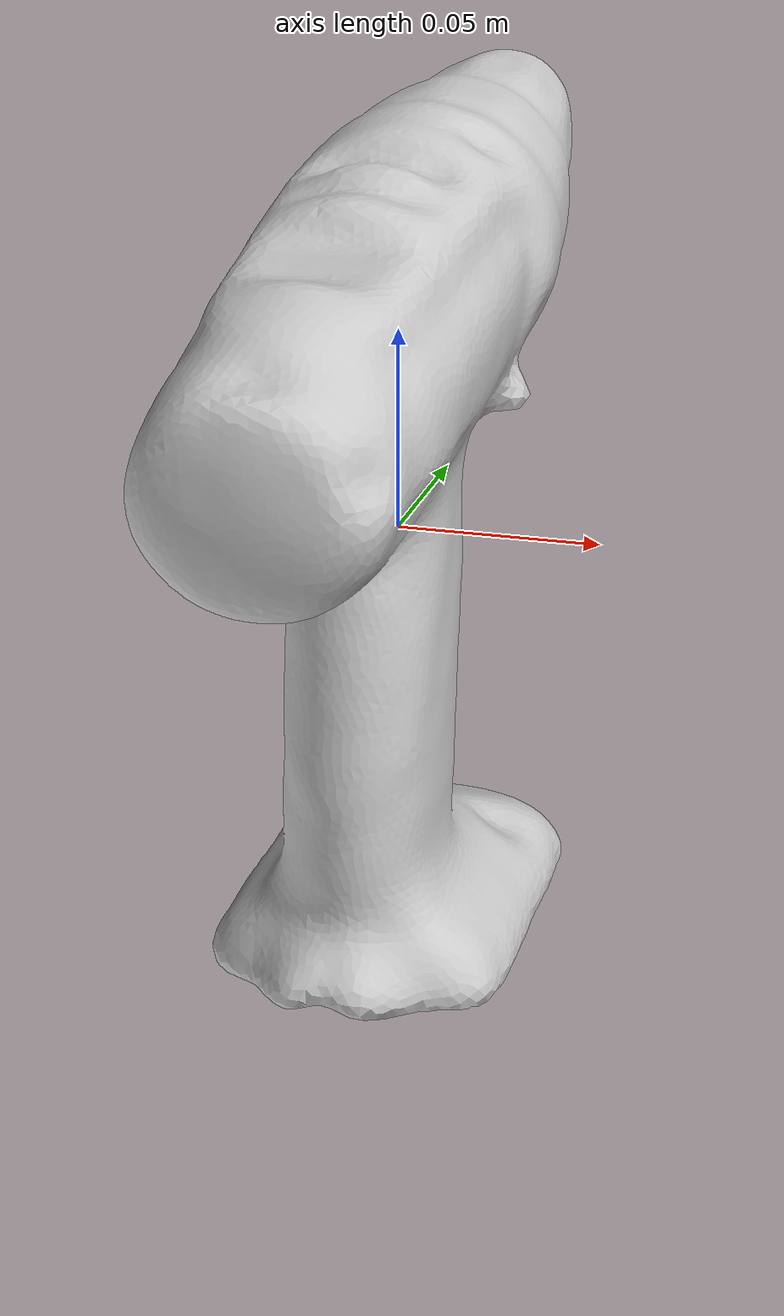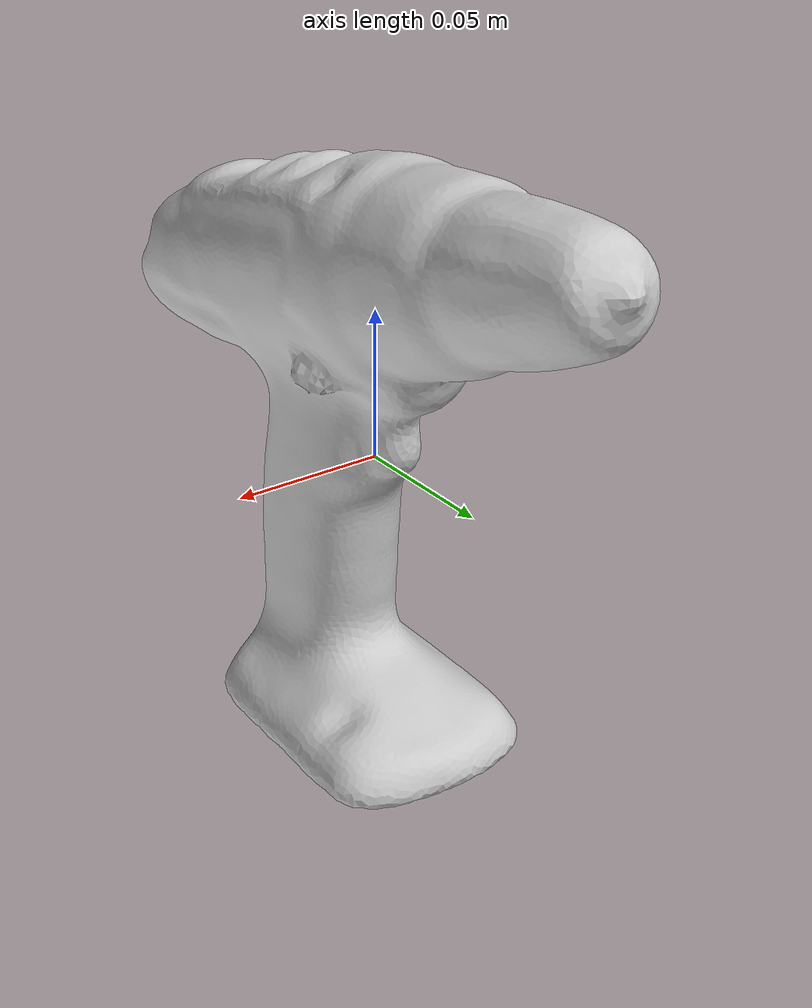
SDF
<?xml version="1.0" ?>
<sdf version="1.5">
  <model name="driller">
	<static>false</static>
    <pose>0 0 0 0 0 0</pose>
    <link name="link">
      <inertial>
        <mass>0.1</mass>
      </inertial>
      <collision name="collision">
        <geometry>
          <mesh>
            <uri>model://Driller/meshes/driller.dae</uri>
            <scale>1 1 1</scale>
          </mesh>
        </geometry>
      </collision>
      <visual name="visual">
        <geometry>
          <mesh>
            <uri>model://Driller/meshes/driller.dae</uri>
          </mesh>
        </geometry>
      </visual>
    </link>
  </model>
</sdf>
